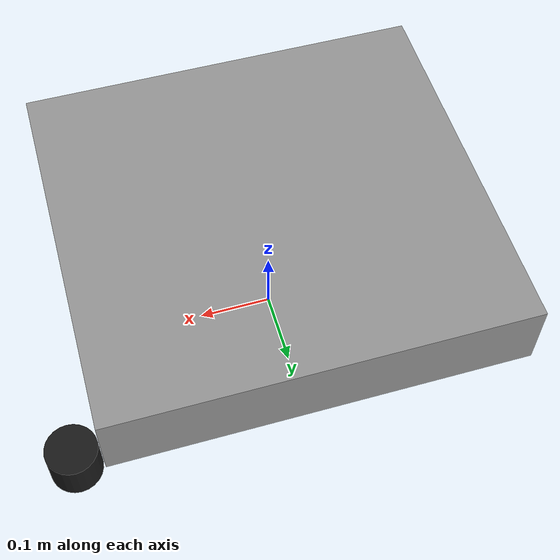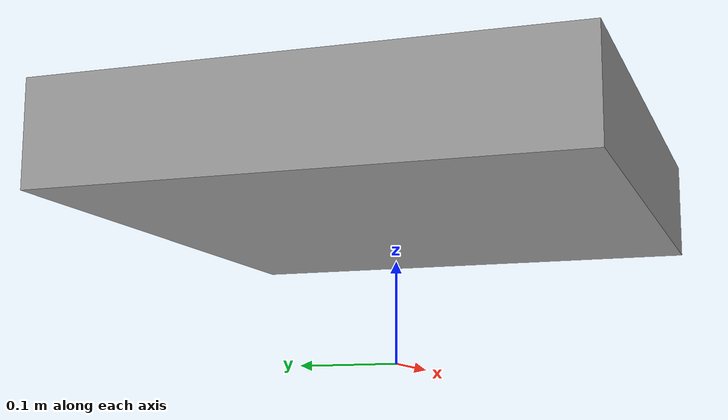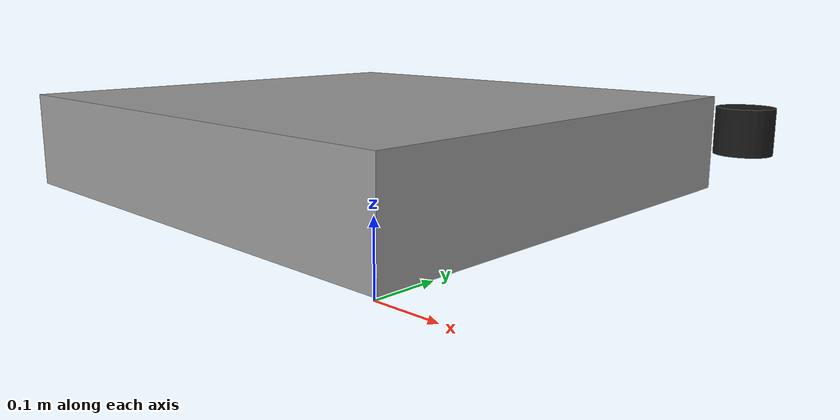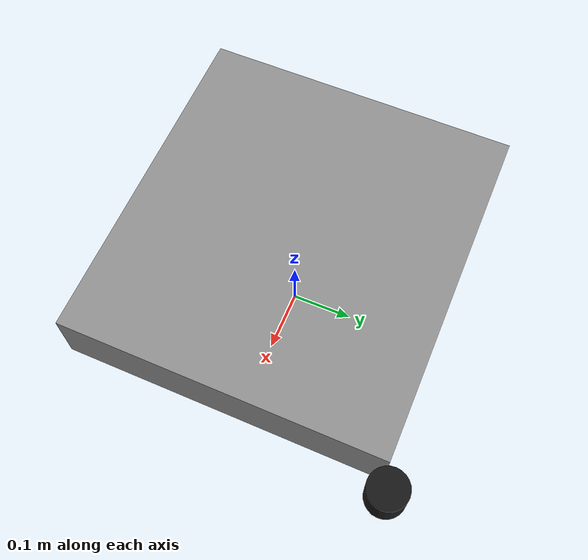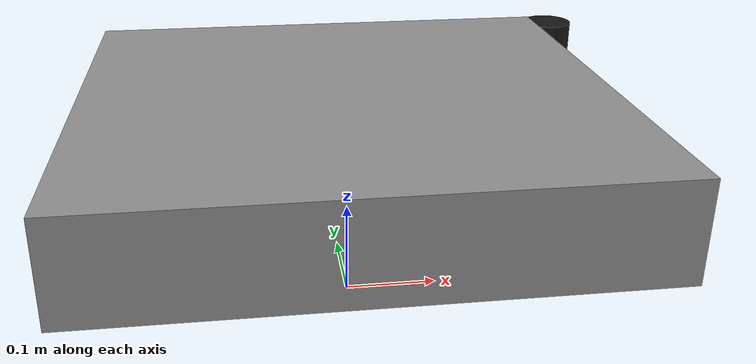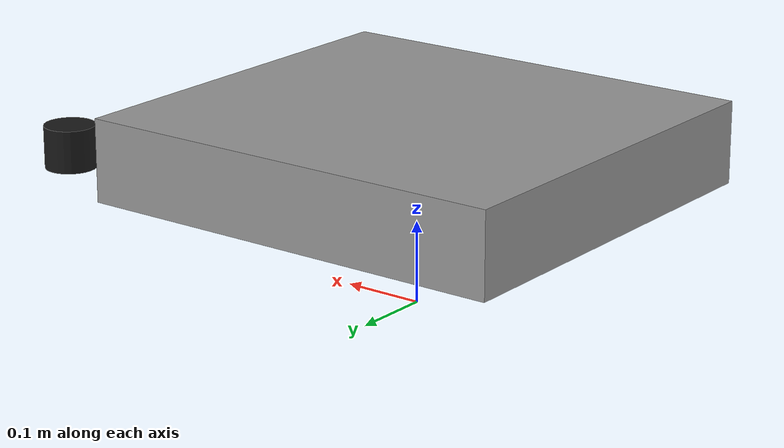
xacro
<?xml version="1.0"?>
<robot xmlns:xacro="http://www.ros.org/wiki/xacro"
       name="mobile_manipulator">

  <!-- Global reference properties (from real robot)     -->

  <!-- base_link is placed at the vertical center of robot body -->
  <xacro:property name="base_height" value="0.135"/>

  <!-- LiDAR position (relative to base_link) -->
  <xacro:property name="laser_x" value="0.30"/>
  <xacro:property name="laser_y" value="0.26"/>
  <xacro:property name="laser_z" value="0.065"/>

  <!-- Arm base (first swivel joint location, relative to base_link) -->
  <xacro:property name="arm_x" value="0.10"/>
  <xacro:property name="arm_y" value="0.0"/>
  <xacro:property name="arm_z" value="0.135"/>

  <!-- Base footprint (ground reference frame)           -->

  <link name="base_footprint">
    <!-- No physical geometry; purely a reference frame -->
    <visual>
      <geometry>
        <cylinder radius="0.001" length="0.001"/>
      </geometry>
    </visual>
  </link>

  <!-- Base link (robot body reference)                  -->

  <link name="base_link">
    <visual>
      <!-- Approximate robot body size -->
      <geometry>
        <box size="0.54 0.50 0.10"/>
      </geometry>
      <!-- Lift box so it sits above base_footprint -->
      <origin xyz="0 0 0.05"/>
      <material name="gray">
        <color rgba="0.6 0.6 0.6 1.0"/>
      </material>
    </visual>
  </link>

  <joint name="base_footprint_to_base_link" type="fixed">
    <parent link="base_footprint"/>
    <child link="base_link"/>
    <origin xyz="0 0 ${base_height}" rpy="0 0 0"/>
  </joint>

  <!-- LiDAR                                            -->

  <link name="laser">
    <visual>
      <geometry>
        <cylinder radius="0.03" length="0.05"/>
      </geometry>
      <material name="black">
        <color rgba="0.1 0.1 0.1 1.0"/>
      </material>
    </visual>
  </link>

  <joint name="laser_joint" type="fixed">
    <parent link="base_link"/>
    <child link="laser"/>
    <!-- 30 cm forward, 26 cm left, 20 cm above ground -->
    <origin xyz="${laser_x} ${laser_y} ${laser_z}" rpy="0 0 0"/>
  </joint>

  <!-- Manipulator mount                                -->

  <!-- Logical attachment point for the arm -->
  <link name="arm_base_link"/>

  <joint name="arm_mount_joint" type="fixed">
    <parent link="base_link"/>
    <child link="arm_base_link"/>
    <!-- 10 cm forward, centered in Y, ~27 cm above ground -->
    <origin xyz="${arm_x} ${arm_y} ${arm_z}" rpy="0 0 0"/>
  </joint>

  <!-- Manipulator (your existing model)                -->

  <xacro:include filename="$(find robot_description)/urdf/manipulator.xacro"/>

</robot>

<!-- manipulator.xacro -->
<robot xmlns:xacro="http://www.ros.org/wiki/xacro">

  <!-- Links (visuals added later) -->

  <link name="link_base_yaw"/>
  <link name="link_shoulder"/>
  <link name="link_elbow"/>
  <link name="link_wrist"/>
  <link name="link_gripper_mount"/>
  <link name="tool0"/>
  <link name="camera_link"/>

  <!-- J1: Base yaw (Z axis) -->
  <joint name="joint_base_yaw" type="revolute">
    <parent link="arm_base_link"/>
    <child link="link_base_yaw"/>
    <origin xyz="0 0 0" rpy="0 0 0"/>
    <axis xyz="0 0 1"/>
    <!-- 0° to 240° -->
    <limit lower="-2.792" upper="1.396" effort="50" velocity="1.0"/>
  </joint>

  <!-- J2: Shoulder pitch (Y axis) -->
  <!-- Offset: z = 15.45 cm -->
  <joint name="joint_shoulder_pitch" type="revolute">
    <parent link="link_base_yaw"/>
    <child link="link_shoulder"/>
    <origin xyz="0 0 0.1545" rpy="0 0 0"/>
    <axis xyz="0 1 0"/>
    <!-- 0° to 195° -->
    <limit lower="-1.57" upper="1.8326" effort="50" velocity="1.0"/>
  </joint>

  <!-- J3: Elbow pitch (Y axis) -->
  <!-- Offset: x = 3 cm, z = 38.96 cm -->
  <joint name="joint_elbow_pitch" type="revolute">
    <parent link="link_shoulder"/>
    <child link="link_elbow"/>
    <origin xyz="-0.03 0 0.3896" rpy="0 0 0"/>
    <axis xyz="0 1 0"/>
    <!-- 0° to 215° -->
    <limit lower="-1.57" upper="2.094" effort="50" velocity="1.0"/>
  </joint>

  <!-- J4: Wrist pitch (Y axis) -->
  <!-- Offset: x = 3 cm, z = 36.5 cm -->
  <joint name="joint_wrist_pitch" type="revolute">
    <parent link="link_elbow"/>
    <child link="link_wrist"/>
    <origin xyz="-0.03 0 0.365" rpy="0 0 0"/>
    <axis xyz="0 1 0"/>
    <!-- 0° to 145° -->
    <limit lower="-0.872" upper="1.57" effort="30" velocity="1.0"/>
  </joint>

  <!-- J5: Wrist roll (Z axis) -->
  <!-- Offset: x = 0.34 cm, z = 9.69 cm -->
  <joint name="joint_wrist_roll" type="revolute">
    <parent link="link_wrist"/>
    <child link="link_gripper_mount"/>
    <origin xyz="-0.0034 0 0.0969" rpy="0 0 0"/>
    <axis xyz="0 0 1"/>
    <limit lower="-3" upper="3" effort="10" velocity="2.0"/>
  </joint>

  <!-- TCP (tool0) -->
  <!-- Offset: z = 14.13 cm -->
  <!-- Approach direction = -Z -->
  <joint name="joint_tool0" type="fixed">
    <parent link="link_gripper_mount"/>
    <child link="tool0"/>
    <origin xyz="0 0 0.1413" rpy="0 0 0"/>
  </joint>

  <!-- Camera mounted after J4 -->
  <!-- (example values, can tune later) -->
  <joint name="joint_camera_mount" type="fixed">
    <parent link="link_wrist"/>
    <child link="camera_link"/>
    <!-- adjust xyz/rpy once physically measured -->
    <origin xyz="0.05 0 0.08" rpy="-1.57 0 0"/>
  </joint>

</robot>
